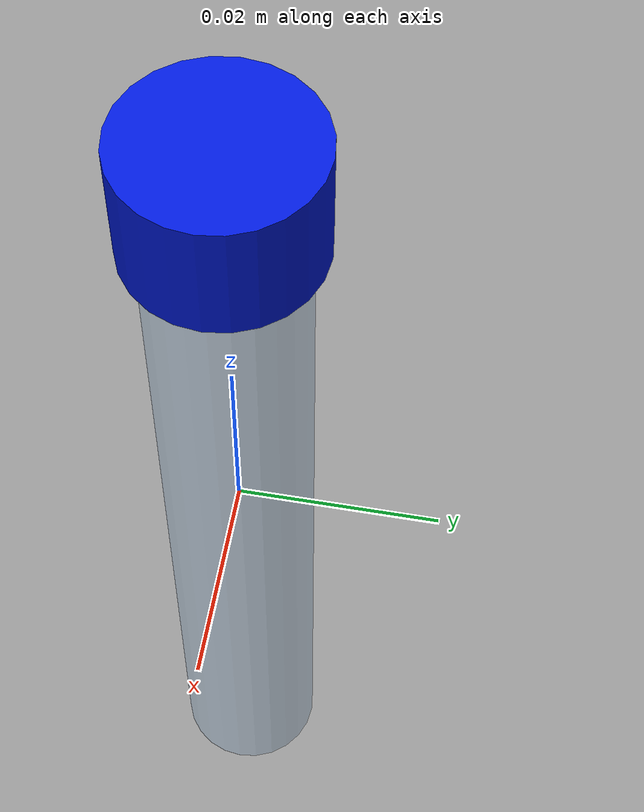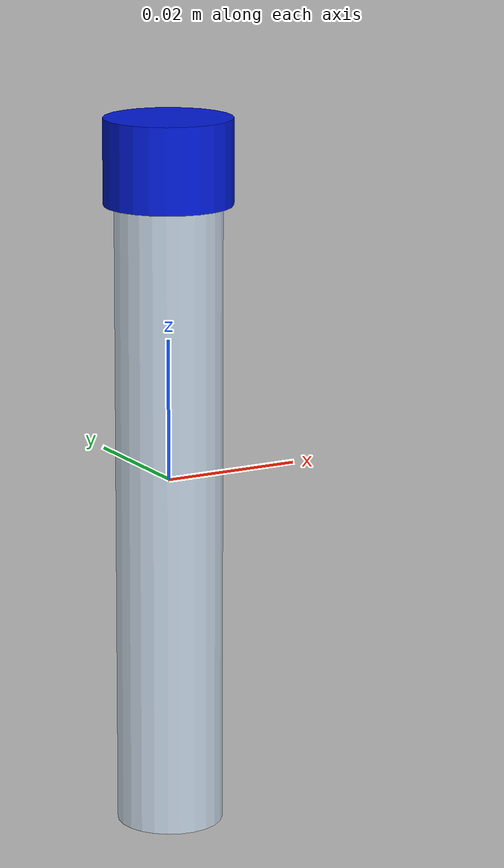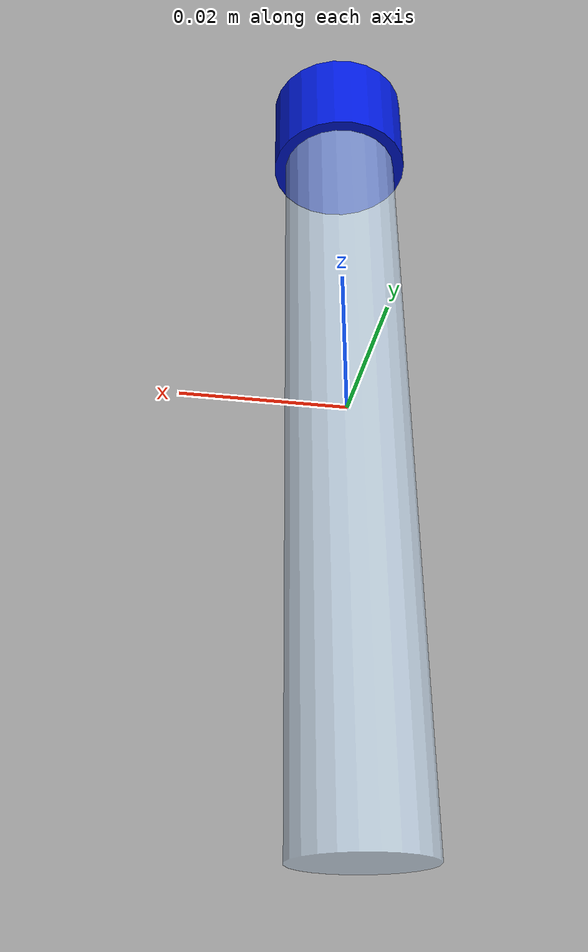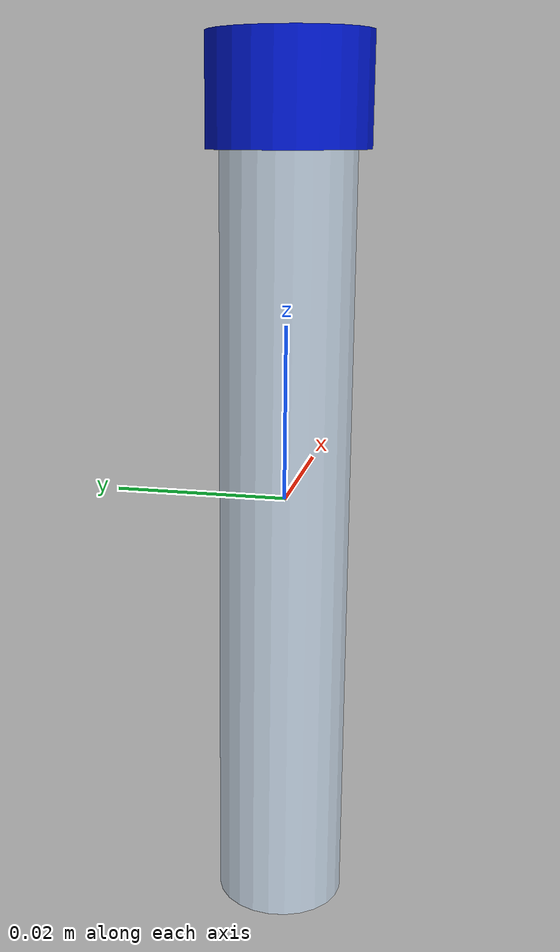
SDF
<?xml version="1.0" ?>
<sdf version="1.5">
  <model name="blue_tube">
    <link name="link">
      <pose>0 0 0 0 0 0</pose>
      <velocity_decay>
        <linear>0.02</linear>
        <angular>0.05</angular>
      </velocity_decay>
      <inertial>
        <mass>0.010</mass>
        <inertia>
          <!-- cylinder r=0.0075 l=0.10; floored to mass/1000=1e-5 for Gazebo stability -->
          <ixx>1e-5</ixx>
          <ixy>0</ixy>
          <ixz>0</ixz>
          <iyy>1e-5</iyy>
          <iyz>0</iyz>
          <izz>1e-5</izz>
        </inertia>
      </inertial>

      <collision name="collision">
        <geometry>
          <cylinder>
            <radius>0.0075</radius>
            <length>0.10</length>
          </cylinder>
        </geometry>
        <surface>
          <contact>
            <ode>
              <kp>1000000</kp>
              <kd>100</kd>
              <max_vel>0.1</max_vel>
              <min_depth>0.001</min_depth>
            </ode>
          </contact>
          <friction>
            <ode>
              <mu>1.0</mu>
              <mu2>1.0</mu2>
            </ode>
            <torsional>
              <coefficient>1.0</coefficient>
              <use_patch_radius>0</use_patch_radius>
              <surface_radius>0.0075</surface_radius>
            </torsional>
          </friction>
        </surface>
      </collision>

      <visual name="visual">
        <geometry>
          <cylinder>
            <radius>0.0075</radius>
            <length>0.10</length>
          </cylinder>
        </geometry>
        <material>
          <ambient>0.8 0.9 1.0 0.6</ambient>
          <diffuse>0.8 0.9 1.0 0.6</diffuse>
        </material>
      </visual>

      <!-- Cap: visual only, no collision — keeps grasp geometry identical to plain tube -->
      <visual name="visual_cap">
        <pose>0 0 0.045 0 0 0</pose>
        <geometry>
          <cylinder>
            <radius>0.009</radius>
            <length>0.012</length>
          </cylinder>
        </geometry>
        <material>
          <ambient>0 0.1 0.85 1</ambient>
          <diffuse>0 0.1 0.85 1</diffuse>
        </material>
      </visual>

    </link>
  </model>
</sdf>
